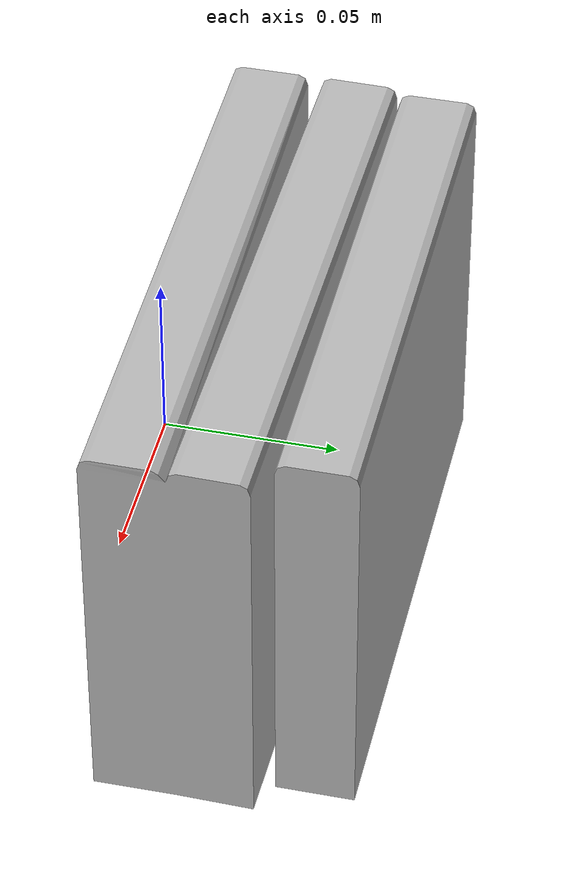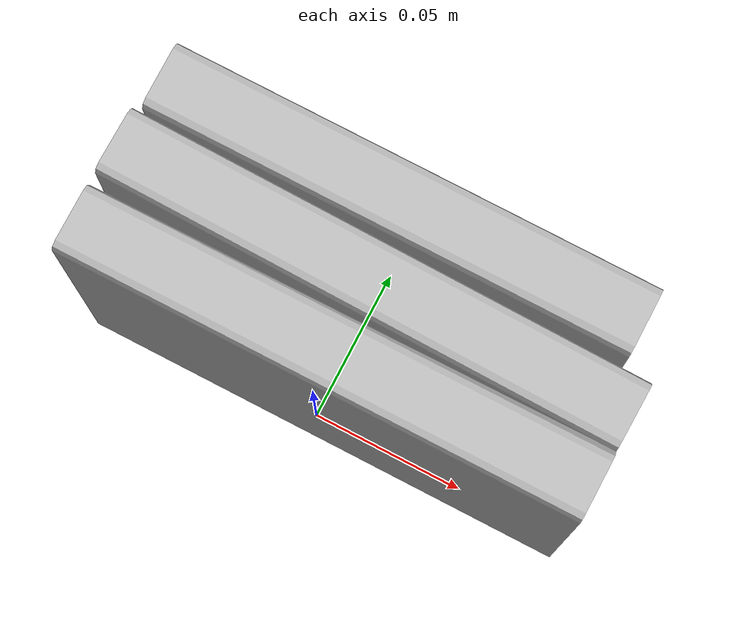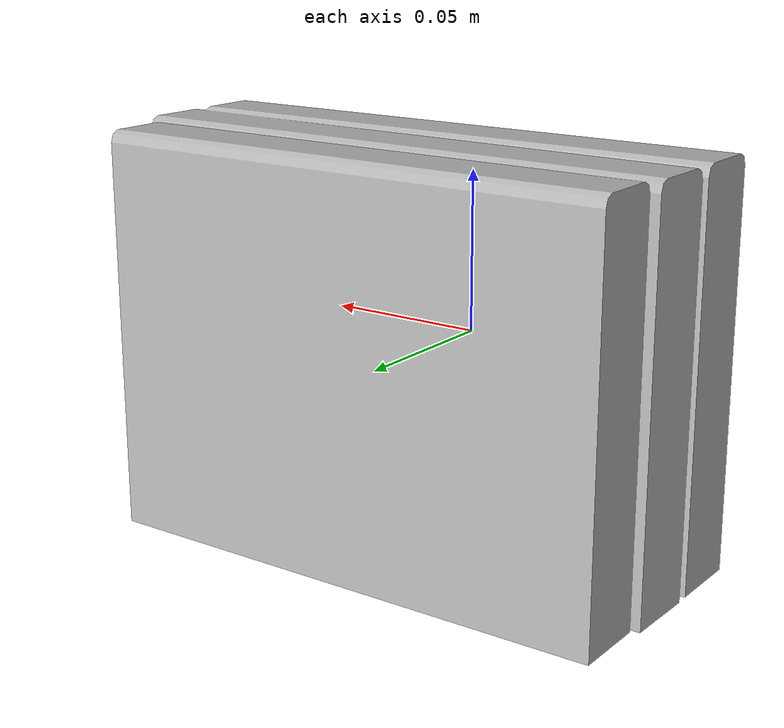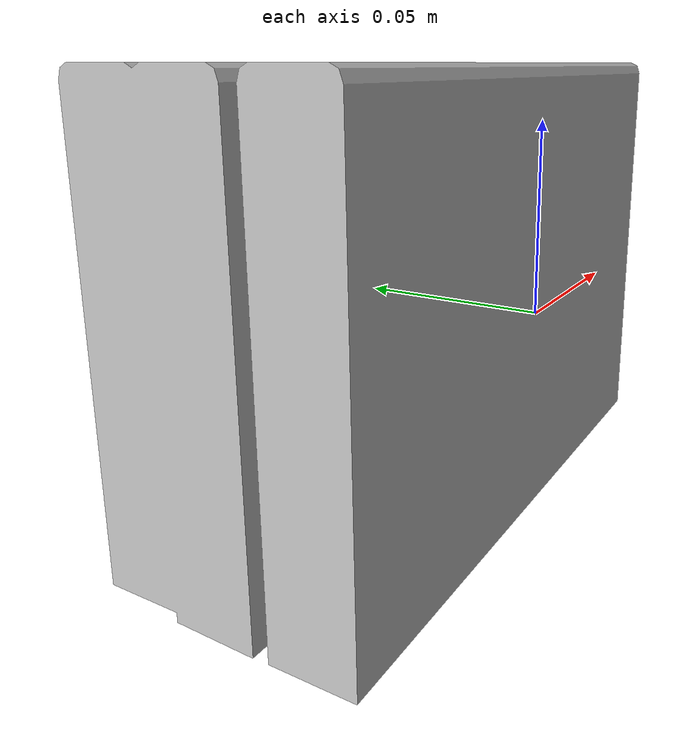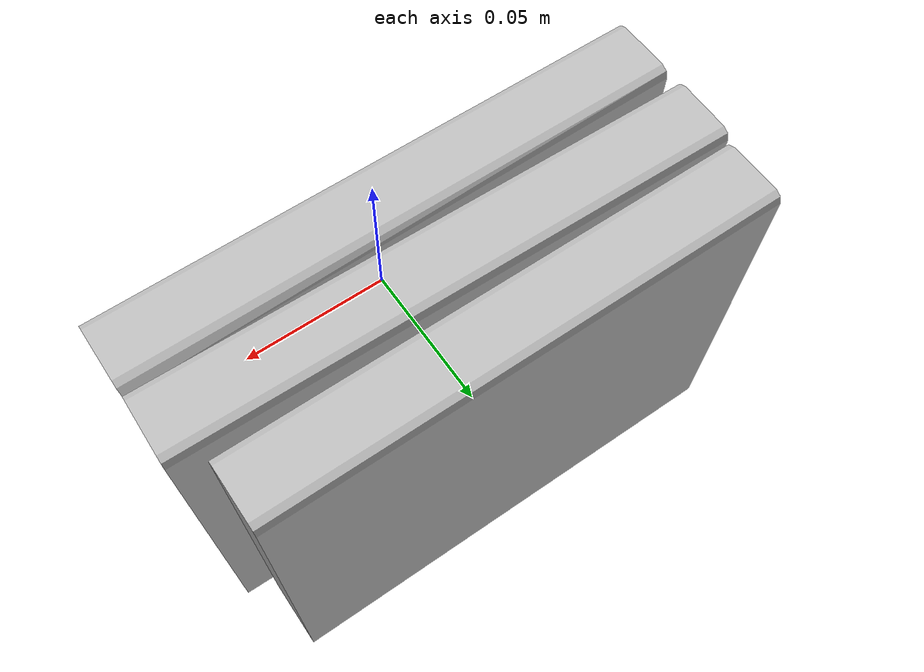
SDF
<?xml version="1.0" ?>
<sdf version="1.4">
  <model name="shelf2_book2_h3">
    <link name="body">
      <pose>0 0 0 0 0 0</pose>
      <inertial>
        <pose>  -0.000499   0.035567   0.002919 0 0 0</pose>
        <mass>0.5</mass>
        <inertia>
          <ixx>0.01</ixx>
          <ixy>0</ixy>
          <ixz>0</ixz>
          <iyy>0.01</iyy>
          <iyz>0</iyz>
          <izz>0.01</izz>
        </inertia>
      </inertial>
      <collision name="collision">
        <geometry>
          <mesh>
            <uri>model://bookshelf/shelf2_items/book2_h3/book2_h3.dae</uri>
          </mesh>
        </geometry>
      </collision>
      <visual name="visual">
        <geometry>
          <mesh>
            <uri>model://bookshelf/shelf2_items/book2_h3/book2_h3.dae</uri>
          </mesh>
        </geometry>
      </visual>
    </link>
  </model>
</sdf>
